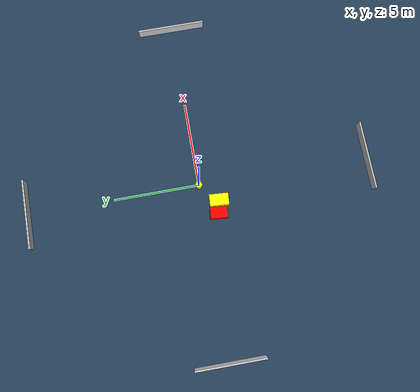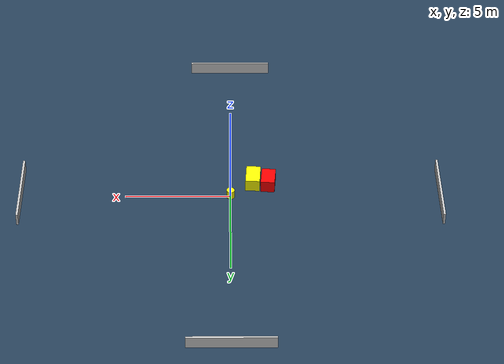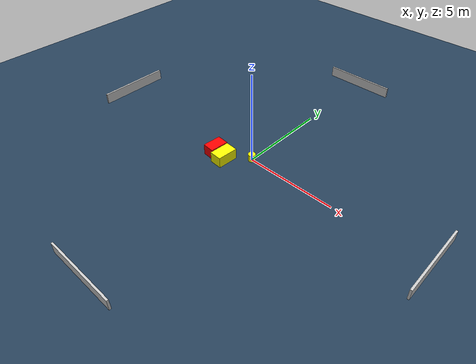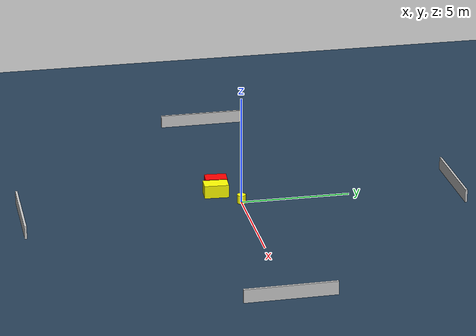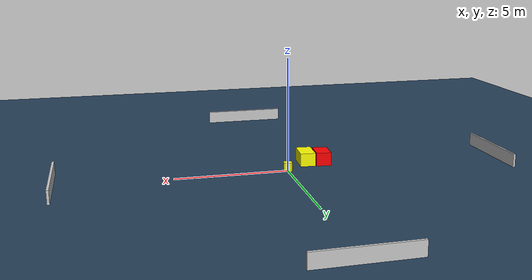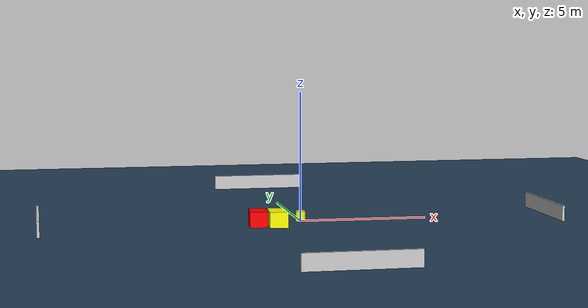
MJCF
<?xml version="1.0" ?>
<mujoco model="generated_environment">
  <option timestep="0.01" integrator="RK4" cone="elliptic"/>
  <default>
    <geom density="1"/>
  </default>
  <asset>
    <texture builtin="gradient" height="3072" name="skybox" rgb1="0.3 0.5 0.7" rgb2="0 0 0" type="skybox" width="512"/>
    <texture builtin="checker" height="300" name="groundplane" rgb1="0.2 0.3 0.4" rgb2="0.1 0.2 0.3" type="2d" width="300"/>
    <material name="groundplane" reflectance="0.2" texrepeat="5 5" texture="groundplane"/>
  </asset>
  <worldbody>
    <light dir="0 0 -1" directional="true" pos="0 0 1.5"/>
    <geom condim="3" friction="0.5 0.005 0.001" material="groundplane" name="floor" pos="0 0 0" size="0 0 0.05" type="plane"/>
    <body name="walls">
      <geom name="wall_1" condim="4" pos="-10.0 0.0 0.3" rgba="0.800000011920929 0.800000011920929 0.800000011920929 1.0" size="0.05 2.0 0.3" type="box"/>
      <geom name="wall_2" condim="4" pos="10.0 0.0 0.3" rgba="0.800000011920929 0.800000011920929 0.800000011920929 1.0" size="0.05 2.0 0.3" type="box"/>
      <geom name="wall_3" condim="4" pos="0.0 -10.0 0.3" rgba="0.800000011920929 0.800000011920929 0.800000011920929 1.0" size="2.0 0.05 0.3" type="box"/>
      <geom name="wall_4" condim="4" pos="0.0 10.0 0.3" rgba="0.800000011920929 0.800000011920929 0.800000011920929 1.0" size="2.0 0.05 0.3" type="box"/>
    </body>
    <body name="robot">
      <joint name="joint_x" type="slide" pos="0 0 0" axis="1 0 0"/>
      <joint name="joint_y" type="slide" pos="0 0 0" axis="0 1 0"/>
      <geom name="robot" type="cylinder" pos="0.0 0.0 0.2" size="0.2 0.2 0.0" mass="5.0" friction="1.0 0.005 0.0001" condim="4" rgba="1.0 1.0 0.0 1.0"/>
    </body>
    <body name="obstacle_1_movable">
      <geom name="obstacle_1_movable" condim="4" pos="-1.0845084567075294 -0.9759784103282889 0.3" euler="0 0 176.4873492963006" friction="0.0 0.005 0.001" rgba="1.0 1.0 0.0 1.0" size="0.3426514739269896 0.5608864619200342 0.3" type="box" mass="0.1"/>
      <joint type="free"/>
    </body>
    <body name="obstacle_2_static">
      <geom name="obstacle_2_static" condim="4" pos="-1.8096202904399794 -0.835767109740867 0.3" euler="0 0 265.20092507183153" friction="0.0 0.005 0.001" rgba="1.0 0.0 0.0 1.0" size="0.5060770507956092 0.3324956438904231 0.3" type="box"/>
    </body>
  </worldbody>
  <actuator>
    <motor name="actuator_x" joint="joint_x" gear="1" ctrlrange="-1 1"/>
    <motor name="actuator_y" joint="joint_y" gear="1" ctrlrange="-1 1"/>
  </actuator>
</mujoco>
